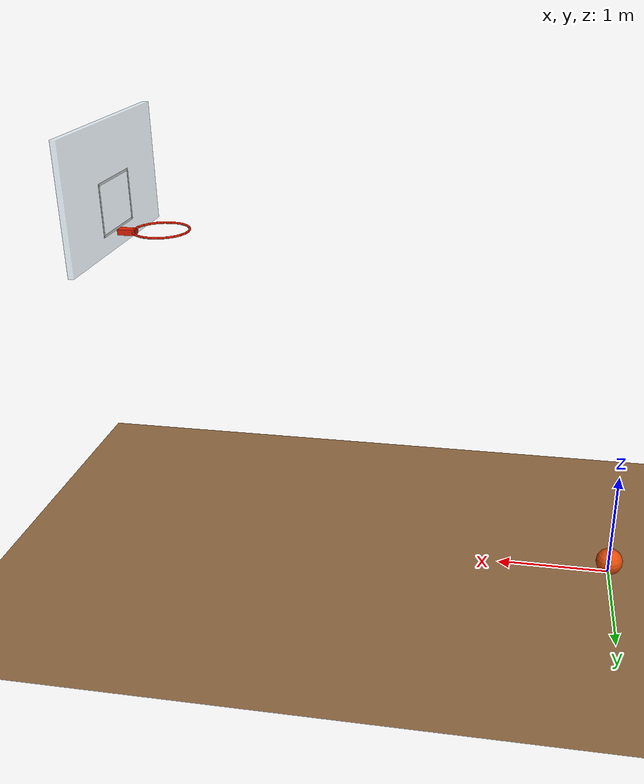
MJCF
<mujoco model="basketball_shot">
  <compiler angle="degree"/>
  <option timestep="0.002" gravity="0 0 -9.81" integrator="RK4"/>
  <visual>
    <global offwidth="1280" offheight="720"/>
    <headlight ambient="0.3 0.3 0.3" diffuse="0.7 0.7 0.7" specular="0.2 0.2 0.2"/>
  </visual>

  <worldbody>
    <light name="court_light" pos="2 -3 7" dir="0 0.3 -1" diffuse="0.8 0.8 0.8"/>
    <camera name="overview" pos="2 -8 4" xyaxes="1 0 0 0 0.2425356 0.9701425"/>

    <geom name="floor" type="plane" pos="0 0 0" size="9 6 0.1" rgba="0.55 0.40 0.25 1" friction="0.8 0.005 0.0001" solref="0.015 0.5"/>

    <body name="ball" pos="0 0 0.12">
      <freejoint name="ball_free"/>
      <geom name="ball" type="sphere" size="0.12" mass="0.624" rgba="0.9 0.30 0.035 1" friction="0.8 0.005 0.0001" solref="0.015 0.5"/>
    </body>

    <body name="hoop" pos="4 0 3.05">
      <geom name="rim_00" type="capsule" fromto="0.238125 0 0 0.230011 0.061631 0" size="0.009525" rgba="0.9 0.12 0.025 1"/>
      <geom name="rim_01" type="capsule" fromto="0.230011 0.061631 0 0.206222 0.119063 0" size="0.009525" rgba="0.9 0.12 0.025 1"/>
      <geom name="rim_02" type="capsule" fromto="0.206222 0.119063 0 0.168381 0.168381 0" size="0.009525" rgba="0.9 0.12 0.025 1"/>
      <geom name="rim_03" type="capsule" fromto="0.168381 0.168381 0 0.119063 0.206222 0" size="0.009525" rgba="0.9 0.12 0.025 1"/>
      <geom name="rim_04" type="capsule" fromto="0.119063 0.206222 0 0.061631 0.230011 0" size="0.009525" rgba="0.9 0.12 0.025 1"/>
      <geom name="rim_05" type="capsule" fromto="0.061631 0.230011 0 0 0.238125 0" size="0.009525" rgba="0.9 0.12 0.025 1"/>
      <geom name="rim_06" type="capsule" fromto="0 0.238125 0 -0.061631 0.230011 0" size="0.009525" rgba="0.9 0.12 0.025 1"/>
      <geom name="rim_07" type="capsule" fromto="-0.061631 0.230011 0 -0.119063 0.206222 0" size="0.009525" rgba="0.9 0.12 0.025 1"/>
      <geom name="rim_08" type="capsule" fromto="-0.119063 0.206222 0 -0.168381 0.168381 0" size="0.009525" rgba="0.9 0.12 0.025 1"/>
      <geom name="rim_09" type="capsule" fromto="-0.168381 0.168381 0 -0.206222 0.119063 0" size="0.009525" rgba="0.9 0.12 0.025 1"/>
      <geom name="rim_10" type="capsule" fromto="-0.206222 0.119063 0 -0.230011 0.061631 0" size="0.009525" rgba="0.9 0.12 0.025 1"/>
      <geom name="rim_11" type="capsule" fromto="-0.230011 0.061631 0 -0.238125 0 0" size="0.009525" rgba="0.9 0.12 0.025 1"/>
      <geom name="rim_12" type="capsule" fromto="-0.238125 0 0 -0.230011 -0.061631 0" size="0.009525" rgba="0.9 0.12 0.025 1"/>
      <geom name="rim_13" type="capsule" fromto="-0.230011 -0.061631 0 -0.206222 -0.119063 0" size="0.009525" rgba="0.9 0.12 0.025 1"/>
      <geom name="rim_14" type="capsule" fromto="-0.206222 -0.119063 0 -0.168381 -0.168381 0" size="0.009525" rgba="0.9 0.12 0.025 1"/>
      <geom name="rim_15" type="capsule" fromto="-0.168381 -0.168381 0 -0.119063 -0.206222 0" size="0.009525" rgba="0.9 0.12 0.025 1"/>
      <geom name="rim_16" type="capsule" fromto="-0.119063 -0.206222 0 -0.061631 -0.230011 0" size="0.009525" rgba="0.9 0.12 0.025 1"/>
      <geom name="rim_17" type="capsule" fromto="-0.061631 -0.230011 0 0 -0.238125 0" size="0.009525" rgba="0.9 0.12 0.025 1"/>
      <geom name="rim_18" type="capsule" fromto="0 -0.238125 0 0.061631 -0.230011 0" size="0.009525" rgba="0.9 0.12 0.025 1"/>
      <geom name="rim_19" type="capsule" fromto="0.061631 -0.230011 0 0.119063 -0.206222 0" size="0.009525" rgba="0.9 0.12 0.025 1"/>
      <geom name="rim_20" type="capsule" fromto="0.119063 -0.206222 0 0.168381 -0.168381 0" size="0.009525" rgba="0.9 0.12 0.025 1"/>
      <geom name="rim_21" type="capsule" fromto="0.168381 -0.168381 0 0.206222 -0.119063 0" size="0.009525" rgba="0.9 0.12 0.025 1"/>
      <geom name="rim_22" type="capsule" fromto="0.206222 -0.119063 0 0.230011 -0.061631 0" size="0.009525" rgba="0.9 0.12 0.025 1"/>
      <geom name="rim_23" type="capsule" fromto="0.230011 -0.061631 0 0.238125 0 0" size="0.009525" rgba="0.9 0.12 0.025 1"/>

      <geom name="rim_mount" type="box" pos="0.304 0 -0.025" size="0.077 0.04 0.025" rgba="0.9 0.12 0.025 1"/>
      <geom name="backboard" type="box" pos="0.406 0 0.3834" size="0.025 0.9144 0.5334" rgba="0.72 0.85 0.92 0.4"/>

      <geom name="target_left" type="box" pos="0.3795 -0.295 0.225" size="0.001 0.01 0.225" rgba="1 1 1 1" contype="0" conaffinity="0"/>
      <geom name="target_right" type="box" pos="0.3795 0.295 0.225" size="0.001 0.01 0.225" rgba="1 1 1 1" contype="0" conaffinity="0"/>
      <geom name="target_top" type="box" pos="0.3795 0 0.44" size="0.001 0.305 0.01" rgba="1 1 1 1" contype="0" conaffinity="0"/>
      <geom name="target_bottom" type="box" pos="0.3795 0 0.01" size="0.001 0.305 0.01" rgba="1 1 1 1" contype="0" conaffinity="0"/>
    </body>
  </worldbody>

  <keyframe>
    <key name="start" time="0" qpos="0 0 0.12 1 0 0 0" qvel="2.857142857 0 8.959857143 0 0 0"/>
  </keyframe>
</mujoco>
